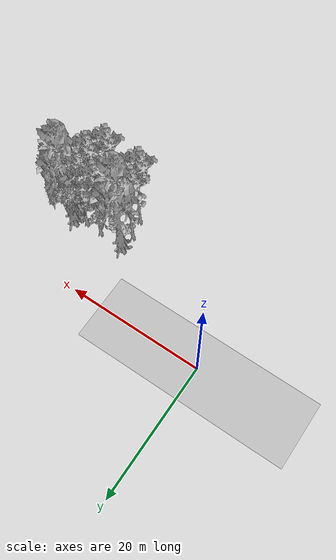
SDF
<sdf version="1.7">
 <world name="default">
  <model name="ground_plane">
   <static>1</static>
   <link name="link">
    <collision name="collision">
     <geometry><plane><normal>0 0 1</normal><size>100 100</size></plane></geometry>
     <surface><contact><ode><min_depth>0.01</min_depth><max_vel>0</max_vel></ode></contact></surface>
    </collision>
    <visual name="grass">
     <cast_shadows>0</cast_shadows>
     <geometry>
      <mesh>
       <scale>0.5814285714285714 0.18142857142857144 0.1</scale>
       <uri>file://grass_plane/meshes/grass_plane.dae</uri>
      </mesh>
     </geometry>
    </visual>
   </link>
  </model>
  <model name="Tree 90">
   <static>1</static>
   <pose>26.50550899374082 -8.574361734735302 0 1.57079 -0 0</pose>
   <link name="link">
    <collision name="collision">
     <geometry><mesh><scale>3.5 5 3.5</scale><uri>model://tree_4/meshes/tree_4.obj</uri></mesh></geometry>
    </collision>
    <visual name="visual">
     <geometry><mesh><scale>3.5 5 3.5</scale><uri>model://tree_4/meshes/tree_4.obj</uri></mesh></geometry>
    </visual>
   </link>
  </model>
  <model name="Tree 98">
   <static>1</static>
   <pose>18.75610245963449 -13.697603097501416 0 1.57079 -0 0</pose>
   <link name="link">
    <collision name="collision">
     <geometry><mesh><scale>3.5 5 3.5</scale><uri>model://tree_9/meshes/tree_9.obj</uri></mesh></geometry>
    </collision>
    <visual name="visual">
     <geometry><mesh><scale>3.5 5 3.5</scale><uri>model://tree_9/meshes/tree_9.obj</uri></mesh></geometry>
    </visual>
   </link>
  </model>
  <model name="Tree 121">
   <static>1</static>
   <pose>18.443761680094482 -8.844858225695052 0 1.57079 -0 0</pose>
   <link name="link">
    <collision name="collision">
     <geometry><mesh><scale>3.5 5 3.5</scale><uri>model://tree_4/meshes/tree_4.obj</uri></mesh></geometry>
    </collision>
    <visual name="visual">
     <geometry><mesh><scale>3.5 5 3.5</scale><uri>model://tree_4/meshes/tree_4.obj</uri></mesh></geometry>
    </visual>
   </link>
  </model>
  <model name="Tree 129">
   <static>1</static>
   <pose>24.8159137322842 -9.205542148021115 0 1.57079 -0 0</pose>
   <link name="link">
    <collision name="collision">
     <geometry><mesh><scale>3.5 5 3.5</scale><uri>model://tree_9/meshes/tree_9.obj</uri></mesh></geometry>
    </collision>
    <visual name="visual">
     <geometry><mesh><scale>3.5 5 3.5</scale><uri>model://tree_9/meshes/tree_9.obj</uri></mesh></geometry>
    </visual>
   </link>
  </model>
  <model name="Tree 183">
   <static>1</static>
   <pose>25.453222502435835 -11.904880812309191 0 1.57079 -0 0</pose>
   <link name="link">
    <collision name="collision">
     <geometry><mesh><scale>3.5 5 3.5</scale><uri>model://tree_9/meshes/tree_9.obj</uri></mesh></geometry>
    </collision>
    <visual name="visual">
     <geometry><mesh><scale>3.5 5 3.5</scale><uri>model://tree_9/meshes/tree_9.obj</uri></mesh></geometry>
    </visual>
   </link>
  </model>
  <model name="Tree 217">
   <static>1</static>
   <pose>25.372982302938482 -8.914139427225365 0 1.57079 -0 0</pose>
   <link name="link">
    <collision name="collision">
     <geometry><mesh><scale>3.5 5 3.5</scale><uri>model://tree_2/meshes/tree_2.obj</uri></mesh></geometry>
    </collision>
    <visual name="visual">
     <geometry><mesh><scale>3.5 5 3.5</scale><uri>model://tree_2/meshes/tree_2.obj</uri></mesh></geometry>
    </visual>
   </link>
  </model>
  <model name="Tree 218">
   <static>1</static>
   <pose>24.05525825645303 -14.071465041924169 0 1.57079 -0 0</pose>
   <link name="link">
    <collision name="collision">
     <geometry><mesh><scale>3.5 5 3.5</scale><uri>model://tree_9/meshes/tree_9.obj</uri></mesh></geometry>
    </collision>
    <visual name="visual">
     <geometry><mesh><scale>3.5 5 3.5</scale><uri>model://tree_9/meshes/tree_9.obj</uri></mesh></geometry>
    </visual>
   </link>
  </model>
  <model name="Tree 324">
   <static>1</static>
   <pose>22.24356450401568 -9.011343889792638 0 1.57079 -0 0</pose>
   <link name="link">
    <collision name="collision">
     <geometry><mesh><scale>3.5 5 3.5</scale><uri>model://tree_9/meshes/tree_9.obj</uri></mesh></geometry>
    </collision>
    <visual name="visual">
     <geometry><mesh><scale>3.5 5 3.5</scale><uri>model://tree_9/meshes/tree_9.obj</uri></mesh></geometry>
    </visual>
   </link>
  </model>
  <model name="Tree 387">
   <static>1</static>
   <pose>18.09672919773854 -11.036370276211576 0 1.57079 -0 0</pose>
   <link name="link">
    <collision name="collision">
     <geometry><mesh><scale>3.5 5 3.5</scale><uri>model://tree_9/meshes/tree_9.obj</uri></mesh></geometry>
    </collision>
    <visual name="visual">
     <geometry><mesh><scale>3.5 5 3.5</scale><uri>model://tree_9/meshes/tree_9.obj</uri></mesh></geometry>
    </visual>
   </link>
  </model>
  <model name="Tree 446">
   <static>1</static>
   <pose>26.74021444745108 -10.076519750457319 0 1.57079 -0 0</pose>
   <link name="link">
    <collision name="collision">
     <geometry><mesh><scale>3.5 5 3.5</scale><uri>model://tree_2/meshes/tree_2.obj</uri></mesh></geometry>
    </collision>
    <visual name="visual">
     <geometry><mesh><scale>3.5 5 3.5</scale><uri>model://tree_2/meshes/tree_2.obj</uri></mesh></geometry>
    </visual>
   </link>
  </model>
  <model name="Bush 11">
   <static>1</static>
   <pose>26.475629853914924 -11.543975247057254 0 1.57079 -0 0</pose>
   <link name="link">
    <collision name="collision">
     <geometry><mesh><scale>2 2 2</scale><uri>model://bush_4/meshes/bush_4.obj</uri></mesh></geometry>
     <surface><contact><collide_without_contact>false</collide_without_contact></contact></surface>
    </collision>
    <visual name="visual">
     <geometry><mesh><scale>2 2 2</scale><uri>model://bush_4/meshes/bush_4.obj</uri></mesh></geometry>
    </visual>
   </link>
  </model>
  <model name="Bush 19">
   <static>1</static>
   <pose>21.921948807865846 -11.255828240993715 0 1.57079 -0 0</pose>
   <link name="link">
    <collision name="collision">
     <geometry><mesh><scale>2 2 2</scale><uri>model://bush_3/meshes/bush_3.obj</uri></mesh></geometry>
     <surface><contact><collide_without_contact>false</collide_without_contact></contact></surface>
    </collision>
    <visual name="visual">
     <geometry><mesh><scale>2 2 2</scale><uri>model://bush_3/meshes/bush_3.obj</uri></mesh></geometry>
    </visual>
   </link>
  </model>
  <model name="Bush 66">
   <static>1</static>
   <pose>24.539448284020978 -9.723090018871968 0 1.57079 -0 0</pose>
   <link name="link">
    <collision name="collision">
     <geometry><mesh><scale>2 2 2</scale><uri>model://bush_2/meshes/bush_2.obj</uri></mesh></geometry>
     <surface><contact><collide_without_contact>false</collide_without_contact></contact></surface>
    </collision>
    <visual name="visual">
     <geometry><mesh><scale>2 2 2</scale><uri>model://bush_2/meshes/bush_2.obj</uri></mesh></geometry>
    </visual>
   </link>
  </model>
  <model name="Bush 67">
   <static>1</static>
   <pose>21.146125616436763 -13.855882116643656 0 1.57079 -0 0</pose>
   <link name="link">
    <collision name="collision">
     <geometry><mesh><scale>2 2 2</scale><uri>model://bush_5/meshes/bush_5.obj</uri></mesh></geometry>
     <surface><contact><collide_without_contact>false</collide_without_contact></contact></surface>
    </collision>
    <visual name="visual">
     <geometry><mesh><scale>2 2 2</scale><uri>model://bush_5/meshes/bush_5.obj</uri></mesh></geometry>
    </visual>
   </link>
  </model>
  <model name="Bush 113">
   <static>1</static>
   <pose>22.712929818349707 -13.10738184413441 0 1.57079 -0 0</pose>
   <link name="link">
    <collision name="collision">
     <geometry><mesh><scale>2 2 2</scale><uri>model://bush_3/meshes/bush_3.obj</uri></mesh></geometry>
     <surface><contact><collide_without_contact>false</collide_without_contact></contact></surface>
    </collision>
    <visual name="visual">
     <geometry><mesh><scale>2 2 2</scale><uri>model://bush_3/meshes/bush_3.obj</uri></mesh></geometry>
    </visual>
   </link>
  </model>
  <model name="Bush 125">
   <static>1</static>
   <pose>25.38827687008758 -14.08057211331913 0 1.57079 -0 0</pose>
   <link name="link">
    <collision name="collision">
     <geometry><mesh><scale>2 2 2</scale><uri>model://bush_2/meshes/bush_2.obj</uri></mesh></geometry>
     <surface><contact><collide_without_contact>false</collide_without_contact></contact></surface>
    </collision>
    <visual name="visual">
     <geometry><mesh><scale>2 2 2</scale><uri>model://bush_2/meshes/bush_2.obj</uri></mesh></geometry>
    </visual>
   </link>
  </model>
  <model name="Bush 134">
   <static>1</static>
   <pose>18.9223093017967 -11.579893518795714 0 1.57079 -0 0</pose>
   <link name="link">
    <collision name="collision">
     <geometry><mesh><scale>2 2 2</scale><uri>model://bush_1/meshes/bush_1.obj</uri></mesh></geometry>
     <surface><contact><collide_without_contact>false</collide_without_contact></contact></surface>
    </collision>
    <visual name="visual">
     <geometry><mesh><scale>2 2 2</scale><uri>model://bush_1/meshes/bush_1.obj</uri></mesh></geometry>
    </visual>
   </link>
  </model>
  <model name="Bush 185">
   <static>1</static>
   <pose>19.6983076361751 -10.70407048251759 0 1.57079 -0 0</pose>
   <link name="link">
    <collision name="collision">
     <geometry><mesh><scale>2 2 2</scale><uri>model://bush_2/meshes/bush_2.obj</uri></mesh></geometry>
     <surface><contact><collide_without_contact>false</collide_without_contact></contact></surface>
    </collision>
    <visual name="visual">
     <geometry><mesh><scale>2 2 2</scale><uri>model://bush_2/meshes/bush_2.obj</uri></mesh></geometry>
    </visual>
   </link>
  </model>
  <model name="Bush 192">
   <static>1</static>
   <pose>25.92555803181169 -10.931639451746609 0 1.57079 -0 0</pose>
   <link name="link">
    <collision name="collision">
     <geometry><mesh><scale>2 2 2</scale><uri>model://bush_4/meshes/bush_4.obj</uri></mesh></geometry>
     <surface><contact><collide_without_contact>false</collide_without_contact></contact></surface>
    </collision>
    <visual name="visual">
     <geometry><mesh><scale>2 2 2</scale><uri>model://bush_4/meshes/bush_4.obj</uri></mesh></geometry>
    </visual>
   </link>
  </model>
  <model name="Bush 199">
   <static>1</static>
   <pose>25.939615445497523 -14.114921960814135 0 1.57079 -0 0</pose>
   <link name="link">
    <collision name="collision">
     <geometry><mesh><scale>2 2 2</scale><uri>model://bush_3/meshes/bush_3.obj</uri></mesh></geometry>
     <surface><contact><collide_without_contact>false</collide_without_contact></contact></surface>
    </collision>
    <visual name="visual">
     <geometry><mesh><scale>2 2 2</scale><uri>model://bush_3/meshes/bush_3.obj</uri></mesh></geometry>
    </visual>
   </link>
  </model>
  <model name="Bush 210">
   <static>1</static>
   <pose>23.81677153956376 -10.409359920195211 0 1.57079 -0 0</pose>
   <link name="link">
    <collision name="collision">
     <geometry><mesh><scale>2 2 2</scale><uri>model://bush_1/meshes/bush_1.obj</uri></mesh></geometry>
     <surface><contact><collide_without_contact>false</collide_without_contact></contact></surface>
    </collision>
    <visual name="visual">
     <geometry><mesh><scale>2 2 2</scale><uri>model://bush_1/meshes/bush_1.obj</uri></mesh></geometry>
    </visual>
   </link>
  </model>
 </world>
</sdf>
